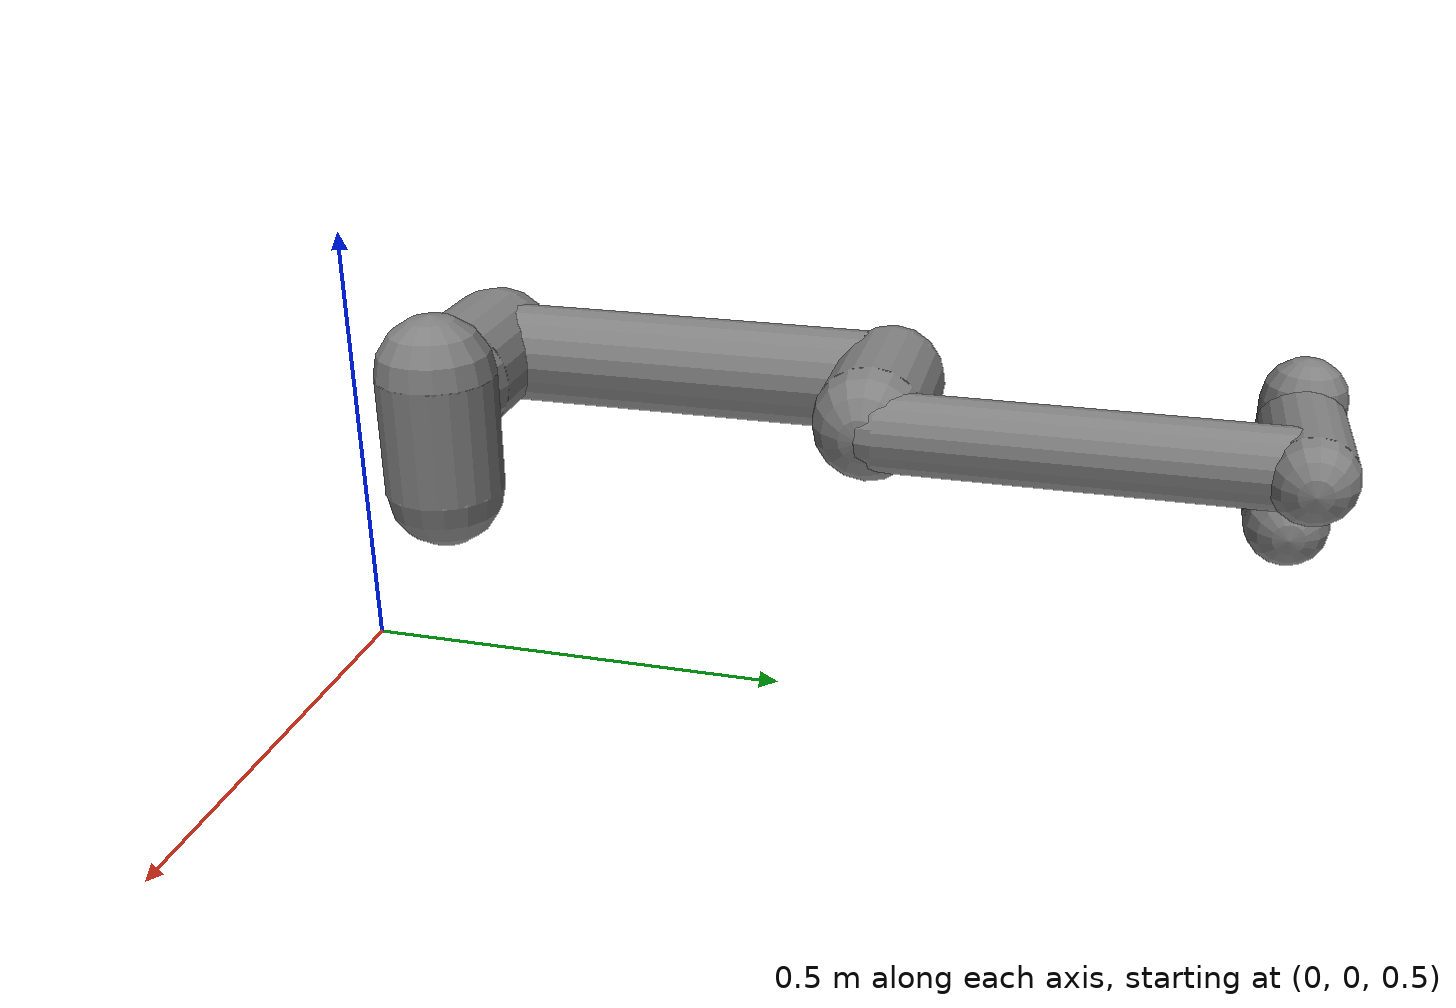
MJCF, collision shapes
<mujoco model="ur5e">
  <compiler angle="radian" autolimits="true"/>

  <option integrator="implicitfast"/>

  <default>
    <default class="ur5e">
      <material specular="0.5" shininess="0.25"/>
      <joint axis="0 1 0" range="-6.28319 6.28319" armature="0.1"/>
      <general gaintype="fixed" biastype="affine" ctrlrange="-6.2831 6.2831" gainprm="2000" biasprm="0 -2000 -400"
        forcerange="-150 150"/>
      <default class="size3">
        <default class="size3_limited">
          <joint range="-3.1415 3.1415"/>
          <general ctrlrange="-3.1415 3.1415"/>
        </default>
      </default>
      <default class="size1">
        <general gainprm="500" biasprm="0 -500 -100" forcerange="-28 28"/>
      </default>
      <default class="visual">
        <geom type="mesh" contype="0" conaffinity="0" group="2"/>
      </default>
      <default class="collision">
        <geom type="capsule" group="3"/>
        <default class="eef_collision">
          <geom type="cylinder"/>
        </default>
      </default>
      <site size="0.001" rgba="0.5 0.5 0.5 0.3" group="4"/>
    </default>
  </default>

  <asset>
    <material class="ur5e" name="black" rgba="0.033 0.033 0.033 1"/>
    <material class="ur5e" name="jointgray" rgba="0.278 0.278 0.278 1"/>
    <material class="ur5e" name="linkgray" rgba="0.82 0.82 0.82 1"/>
    <material class="ur5e" name="urblue" rgba="0.49 0.678 0.8 1"/>

    <mesh file="base_0.obj"/>
    <mesh file="base_1.obj"/>
    <mesh file="shoulder_0.obj"/>
    <mesh file="shoulder_1.obj"/>
    <mesh file="shoulder_2.obj"/>
    <mesh file="upperarm_0.obj"/>
    <mesh file="upperarm_1.obj"/>
    <mesh file="upperarm_2.obj"/>
    <mesh file="upperarm_3.obj"/>
    <mesh file="forearm_0.obj"/>
    <mesh file="forearm_1.obj"/>
    <mesh file="forearm_2.obj"/>
    <mesh file="forearm_3.obj"/>
    <mesh file="wrist1_0.obj"/>
    <mesh file="wrist1_1.obj"/>
    <mesh file="wrist1_2.obj"/>
    <mesh file="wrist2_0.obj"/>
    <mesh file="wrist2_1.obj"/>
    <mesh file="wrist2_2.obj"/>
    <mesh file="wrist3.obj"/>
  </asset>

  <worldbody>
  <light name="spotlight" mode="targetbodycom" target="wrist_2_link" pos="0 -1 2"/>
  <!-- Rotate base +90 degrees (yaw) so the robot starts rotated counter-clockwise when viewed from above -->
  <body name="base" pos="0.2 0.2 0.74" quat="0.70710678 0 0 0.70710678" childclass="ur5e">
      <inertial mass="4.0" pos="0 0 0" diaginertia="0.00443333156 0.00443333156 0.0072"/>
      <geom mesh="base_0" material="black" class="visual"/>
      <geom mesh="base_1" material="jointgray" class="visual"/>
      <body name="shoulder_link" pos="0 0 0.163">
        <inertial mass="3.7" pos="0 0 0" diaginertia="0.0102675 0.0102675 0.00666"/>
        <joint name="shoulder_pan_joint" class="size3" axis="0 0 1"/>
        <geom mesh="shoulder_0" material="urblue" class="visual"/>
        <geom mesh="shoulder_1" material="black" class="visual"/>
        <geom mesh="shoulder_2" material="jointgray" class="visual"/>
        <geom class="collision" size="0.06 0.06" pos="0 0 -0.04"/>
        <body name="upper_arm_link" pos="0 0.138 0" quat="1 0 1 0">
          <inertial mass="8.393" pos="0 0 0.2125" diaginertia="0.133886 0.133886 0.0151074"/>
          <joint name="shoulder_lift_joint" class="size3"/>
          <geom mesh="upperarm_0" material="linkgray" class="visual"/>
          <geom mesh="upperarm_1" material="black" class="visual"/>
          <geom mesh="upperarm_2" material="jointgray" class="visual"/>
          <geom mesh="upperarm_3" material="urblue" class="visual"/>
          <geom class="collision" pos="0 -0.04 0" quat="1 1 0 0" size="0.06 0.06"/>
          <geom class="collision" size="0.05 0.2" pos="0 0 0.2"/>
          <body name="forearm_link" pos="0 -0.131 0.425">
            <inertial mass="2.275" pos="0 0 0.196" diaginertia="0.0311796 0.0311796 0.004095"/>
            <joint name="elbow_joint" class="size3_limited"/>
            <geom mesh="forearm_0" material="urblue" class="visual"/>
            <geom mesh="forearm_1" material="linkgray" class="visual"/>
            <geom mesh="forearm_2" material="black" class="visual"/>
            <geom mesh="forearm_3" material="jointgray" class="visual"/>
            <geom class="collision" pos="0 0.08 0" quat="1 1 0 0" size="0.055 0.06"/>
            <geom class="collision" size="0.038 0.19" pos="0 0 0.2"/>
            <body name="wrist_1_link" pos="0 0 0.392" quat="1 0 1 0">
              <inertial mass="1.219" pos="0 0.127 0" diaginertia="0.0025599 0.0025599 0.0021942"/>
              <joint name="wrist_1_joint" class="size1"/>
              <geom mesh="wrist1_0" material="black" class="visual"/>
              <geom mesh="wrist1_1" material="urblue" class="visual"/>
              <geom mesh="wrist1_2" material="jointgray" class="visual"/>
              <geom class="collision" pos="0 0.05 0" quat="1 1 0 0" size="0.04 0.07"/>
              <body name="wrist_2_link" pos="0 0.127 0">
                <inertial mass="1.219" pos="0 0 0.1" diaginertia="0.0025599 0.0025599 0.0021942"/>
                <joint name="wrist_2_joint" axis="0 0 1" class="size1"/>
                <geom mesh="wrist2_0" material="black" class="visual"/>
                <geom mesh="wrist2_1" material="urblue" class="visual"/>
                <geom mesh="wrist2_2" material="jointgray" class="visual"/>
                <geom class="collision" size="0.04 0.06" pos="0 0 0.04"/>
                <geom class="collision" pos="0 0.02 0.1" quat="1 1 0 0" size="0.04 0.04"/>
                <body name="wrist_3_link" pos="0 0 0.1">
                  <inertial mass="0.1889" pos="0 0.0771683 0" quat="1 0 0 1"
                    diaginertia="0.000132134 9.90863e-05 9.90863e-05"/>
                  <joint name="wrist_3_joint" class="size1"/>
                  <geom material="linkgray" mesh="wrist3" class="visual"/>
                  <geom class="eef_collision" pos="0 0.08 0" quat="1 1 0 0" size="0.04 0.02"/>
                  <site name="attachment_site" pos="0 0.1 0" quat="-1 1 0 0"/>
                  <!-- Simple two-finger parallel gripper mounted at the wrist end -->
                  <body name="gripper_mount" pos="0 0.12 0">
                    <!-- central mount removed to keep the gap fully clear -->
                    <!-- left finger (slides along x negative direction) -->
                    <body name="finger_left" pos="-0.03 0 0">
                      <!-- add damping to reduce springy oscillation on contact -->
                      <joint name="gripper_left_joint" type="slide" axis="1 0 0" range="0 0.05" damping="50"/>
                      <geom pos="0 0 0" type="box" size="0.01 0.02 0.02" rgba="0.6 0.6 0.6 1"/>
          <!-- inner-face collision geom (thin box) placed along the finger inner face to reliably detect contact
            with objects that sit between the prongs. This covers a larger contact area. -->
          <!-- inner-face collision geom moved slightly outward and widened so contact occurs earlier -->
          <geom name="grip_left_inner_geom" pos="0.007 0 0" type="box" size="0.003 0.02 0.02" rgba="0.8 0.1 0.1 1"/>
          <site name="grip_left_tip" pos="0.01 0 0" size="0.005" rgba="1 0 0 0.3"/>
                    </body>
                    <!-- right finger (slides along x positive direction) -->
                    <body name="finger_right" pos="0.03 0 0">
                      <!-- add damping to reduce springy oscillation on contact -->
                      <joint name="gripper_right_joint" type="slide" axis="-1 0 0" range="0 0.05" damping="50"/>
                      <geom pos="0 0 0" type="box" size="0.01 0.02 0.02" rgba="0.6 0.6 0.6 1"/>
                      <!-- inner-face collision geom (thin box) placed along the finger inner face to reliably detect contact -->
                      <!-- inner-face collision geom moved slightly outward and widened so contact occurs earlier -->
                      <geom name="grip_right_inner_geom" pos="-0.007 0 0" type="box" size="0.003 0.02 0.02" rgba="0.1 0.8 0.1 1"/>
                      <site name="grip_right_tip" pos="-0.01 0 0" size="0.005" rgba="0 1 0 0.3"/>
                    </body>
                  </body>
                </body>
              </body>
            </body>
          </body>
        </body>
      </body>
    </body>
  </worldbody>

  <actuator>
    <general class="size3" name="shoulder_pan" joint="shoulder_pan_joint"/>
    <general class="size3" name="shoulder_lift" joint="shoulder_lift_joint"/>
    <general class="size3_limited" name="elbow" joint="elbow_joint"/>
    <general class="size1" name="wrist_1" joint="wrist_1_joint"/>
    <general class="size1" name="wrist_2" joint="wrist_2_joint"/>
    <general class="size1" name="wrist_3" joint="wrist_3_joint"/>
    <!-- Gripper actuators (position control the slide joints) -->
    <position name="gripper_left" joint="gripper_left_joint" kp="300"/>
    <position name="gripper_right" joint="gripper_right_joint" kp="300"/>
  </actuator>

  <!-- keyframe block removed (scene-level extras may change expected qpos size) -->
</mujoco>
